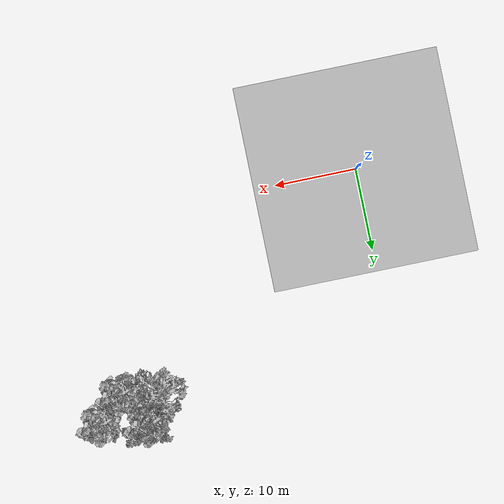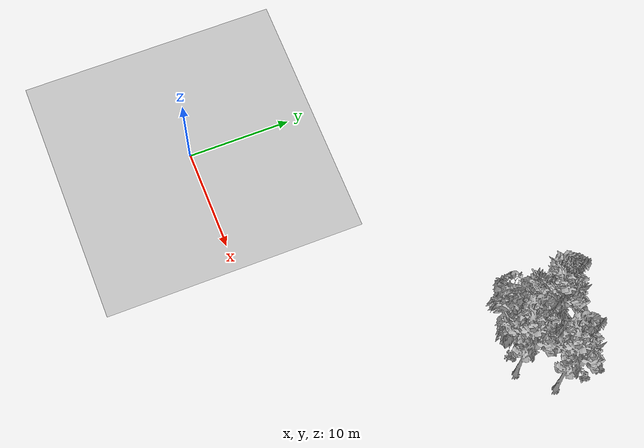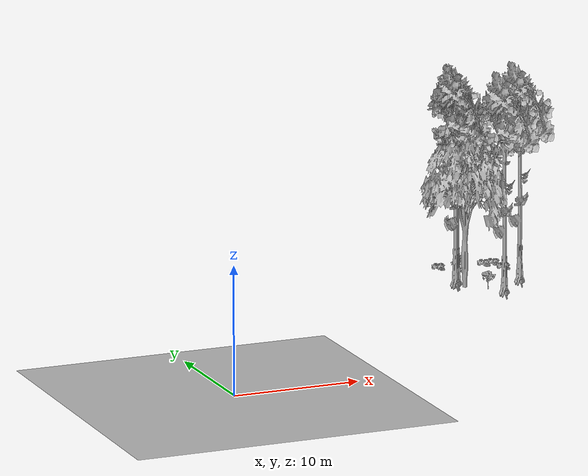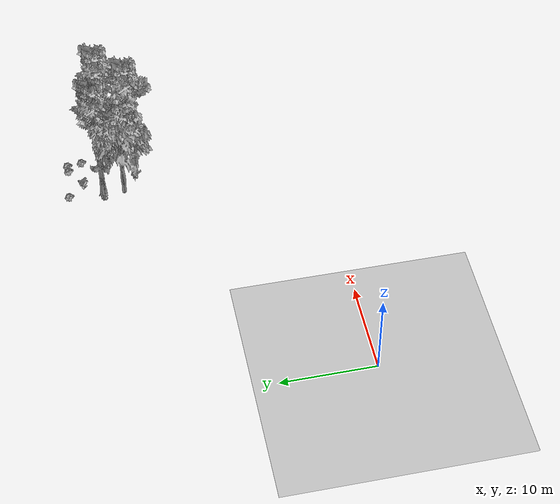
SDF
<sdf version="1.7">
 <world name="default">
  <model name="ground_plane">
   <static>1</static>
   <link name="link">
    <collision name="collision">
     <pose>-50 0 0 0 -0 0</pose>
     <geometry><plane><normal>0 0 1</normal><size>80 80</size></plane></geometry>
     <surface><contact><ode><min_depth>0.01</min_depth><max_vel>0</max_vel></ode></contact></surface>
    </collision>
    <visual name="grass">
     <cast_shadows>0</cast_shadows>
     <geometry>
      <mesh>
       <scale>0.46714285714285714 0.46714285714285714 0.1</scale>
       <uri>file://grass_plane/meshes/grass_plane.dae</uri>
      </mesh>
     </geometry>
    </visual>
   </link>
  </model>
  <model name="Tree 54">
   <static>1</static>
   <pose>28.354117974586543 21.354500607505457 0 1.57079 -0 0</pose>
   <link name="link">
    <collision name="collision">
     <geometry><mesh><scale>3.5 5 3.5</scale><uri>model://tree_2/meshes/tree_2.obj</uri></mesh></geometry>
    </collision>
    <visual name="visual">
     <geometry><mesh><scale>3.5 5 3.5</scale><uri>model://tree_2/meshes/tree_2.obj</uri></mesh></geometry>
    </visual>
   </link>
  </model>
  <model name="Tree 111">
   <static>1</static>
   <pose>33.79052268417415 22.623247573406964 0 1.57079 -0 0</pose>
   <link name="link">
    <collision name="collision">
     <geometry><mesh><scale>3.5 5 3.5</scale><uri>model://tree_9/meshes/tree_9.obj</uri></mesh></geometry>
    </collision>
    <visual name="visual">
     <geometry><mesh><scale>3.5 5 3.5</scale><uri>model://tree_9/meshes/tree_9.obj</uri></mesh></geometry>
    </visual>
   </link>
  </model>
  <model name="Tree 440">
   <static>1</static>
   <pose>31.195271829254196 19.87994468524728 0 1.57079 -0 0</pose>
   <link name="link">
    <collision name="collision">
     <geometry><mesh><scale>3.5 5 3.5</scale><uri>model://tree_9/meshes/tree_9.obj</uri></mesh></geometry>
    </collision>
    <visual name="visual">
     <geometry><mesh><scale>3.5 5 3.5</scale><uri>model://tree_9/meshes/tree_9.obj</uri></mesh></geometry>
    </visual>
   </link>
  </model>
  <model name="Tree 552">
   <static>1</static>
   <pose>28.80750450877909 23.709825839201876 0 1.57079 -0 0</pose>
   <link name="link">
    <collision name="collision">
     <geometry><mesh><scale>3.5 5 3.5</scale><uri>model://tree_9/meshes/tree_9.obj</uri></mesh></geometry>
    </collision>
    <visual name="visual">
     <geometry><mesh><scale>3.5 5 3.5</scale><uri>model://tree_9/meshes/tree_9.obj</uri></mesh></geometry>
    </visual>
   </link>
  </model>
  <model name="Tree 581">
   <static>1</static>
   <pose>28.598790194648146 23.537020643542085 0 1.57079 -0 0</pose>
   <link name="link">
    <collision name="collision">
     <geometry><mesh><scale>3.5 5 3.5</scale><uri>model://tree_9/meshes/tree_9.obj</uri></mesh></geometry>
    </collision>
    <visual name="visual">
     <geometry><mesh><scale>3.5 5 3.5</scale><uri>model://tree_9/meshes/tree_9.obj</uri></mesh></geometry>
    </visual>
   </link>
  </model>
  <model name="Bush 38">
   <static>1</static>
   <pose>32.64213220149868 27.016406825038302 0 1.57079 -0 0</pose>
   <link name="link">
    <collision name="collision">
     <geometry><mesh><scale>2 2 2</scale><uri>model://bush_2/meshes/bush_2.obj</uri></mesh></geometry>
     <surface><contact><collide_without_contact>false</collide_without_contact></contact></surface>
    </collision>
    <visual name="visual">
     <geometry><mesh><scale>2 2 2</scale><uri>model://bush_2/meshes/bush_2.obj</uri></mesh></geometry>
    </visual>
   </link>
  </model>
  <model name="Bush 50">
   <static>1</static>
   <pose>28.78833284636518 27.344778935698713 0 1.57079 -0 0</pose>
   <link name="link">
    <collision name="collision">
     <geometry><mesh><scale>2 2 2</scale><uri>model://bush_2/meshes/bush_2.obj</uri></mesh></geometry>
     <surface><contact><collide_without_contact>false</collide_without_contact></contact></surface>
    </collision>
    <visual name="visual">
     <geometry><mesh><scale>2 2 2</scale><uri>model://bush_2/meshes/bush_2.obj</uri></mesh></geometry>
    </visual>
   </link>
  </model>
  <model name="Bush 72">
   <static>1</static>
   <pose>29.85280507687102 20.006779185691215 0 1.57079 -0 0</pose>
   <link name="link">
    <collision name="collision">
     <geometry><mesh><scale>2 2 2</scale><uri>model://bush_5/meshes/bush_5.obj</uri></mesh></geometry>
     <surface><contact><collide_without_contact>false</collide_without_contact></contact></surface>
    </collision>
    <visual name="visual">
     <geometry><mesh><scale>2 2 2</scale><uri>model://bush_5/meshes/bush_5.obj</uri></mesh></geometry>
    </visual>
   </link>
  </model>
  <model name="Bush 105">
   <static>1</static>
   <pose>29.958739054472943 25.613533649442445 0 1.57079 -0 0</pose>
   <link name="link">
    <collision name="collision">
     <geometry><mesh><scale>2 2 2</scale><uri>model://bush_4/meshes/bush_4.obj</uri></mesh></geometry>
     <surface><contact><collide_without_contact>false</collide_without_contact></contact></surface>
    </collision>
    <visual name="visual">
     <geometry><mesh><scale>2 2 2</scale><uri>model://bush_4/meshes/bush_4.obj</uri></mesh></geometry>
    </visual>
   </link>
  </model>
  <model name="Bush 446">
   <static>1</static>
   <pose>33.46137302865807 27.04487011699719 0 1.57079 -0 0</pose>
   <link name="link">
    <collision name="collision">
     <geometry><mesh><scale>2 2 2</scale><uri>model://bush_2/meshes/bush_2.obj</uri></mesh></geometry>
     <surface><contact><collide_without_contact>false</collide_without_contact></contact></surface>
    </collision>
    <visual name="visual">
     <geometry><mesh><scale>2 2 2</scale><uri>model://bush_2/meshes/bush_2.obj</uri></mesh></geometry>
    </visual>
   </link>
  </model>
  <model name="Bush 623">
   <static>1</static>
   <pose>33.674182733449214 25.482998945827518 0 1.57079 -0 0</pose>
   <link name="link">
    <collision name="collision">
     <geometry><mesh><scale>2 2 2</scale><uri>model://bush_2/meshes/bush_2.obj</uri></mesh></geometry>
     <surface><contact><collide_without_contact>false</collide_without_contact></contact></surface>
    </collision>
    <visual name="visual">
     <geometry><mesh><scale>2 2 2</scale><uri>model://bush_2/meshes/bush_2.obj</uri></mesh></geometry>
    </visual>
   </link>
  </model>
 </world>
</sdf>
